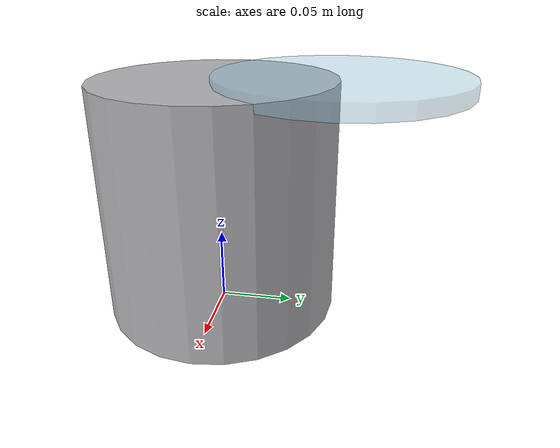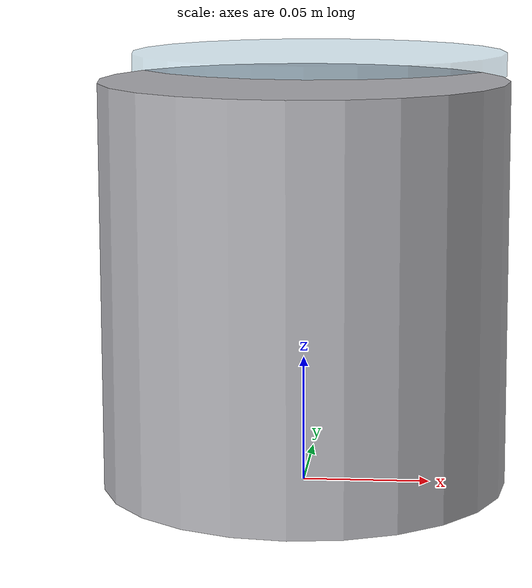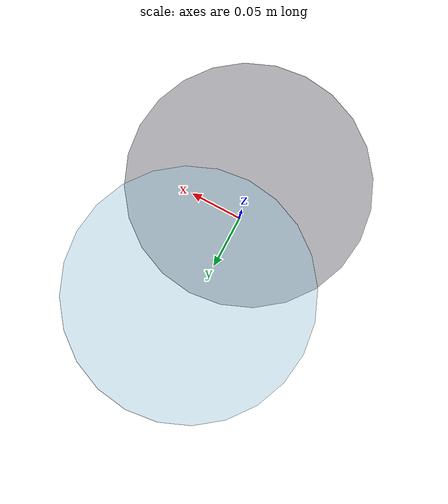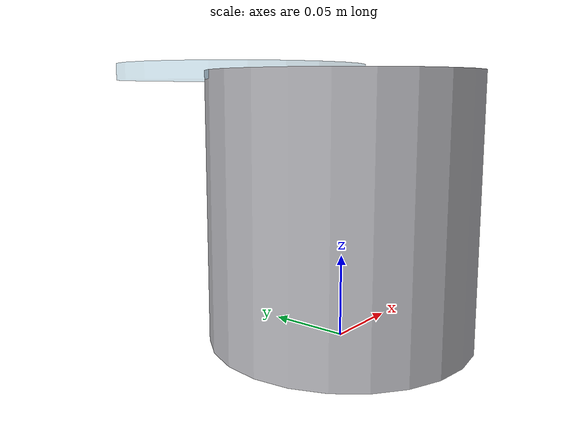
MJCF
<?xml version="1.0" encoding="utf-8"?>
<mujoco model="pilling_tester">
  <compiler angle="radian" autolimits="true"/>
  <default>
    <default class="body"><geom contype="1" conaffinity="1"/></default>
  </default>
  <worldbody>
    <body name="base">
      <geom type="cylinder" size="0.08 0.08" pos="0 0 0.08" rgba="0.7 0.7 0.72 1" class="body"/>
      <body name="drum_lid" pos="0 0.08 0.16">
        <joint name="drum_lid_joint" type="hinge" axis="1 0 0" range="0 1.6" damping="0.4" frictionloss="0.3"/>
  <geom type="cylinder" size="0.08 0.005" pos="0 0 0" rgba="0.6 0.8 0.9 0.4" class="body"/>
      </body>
    </body>
  </worldbody>
</mujoco>
